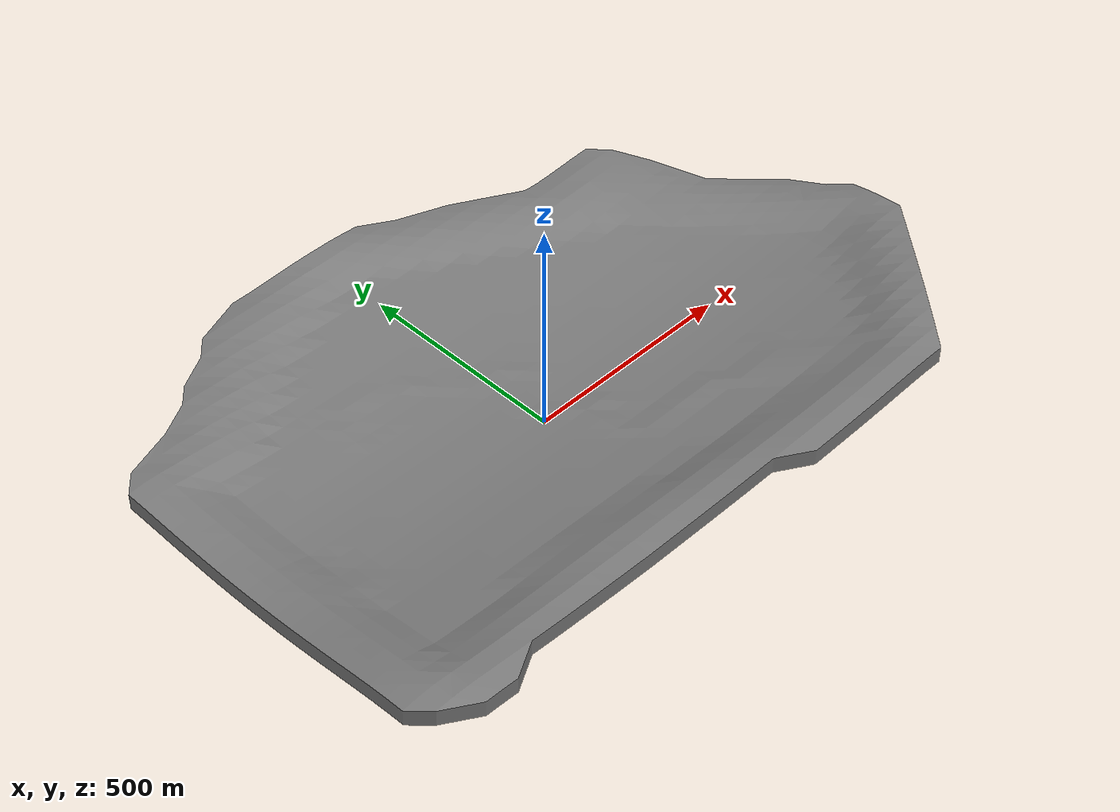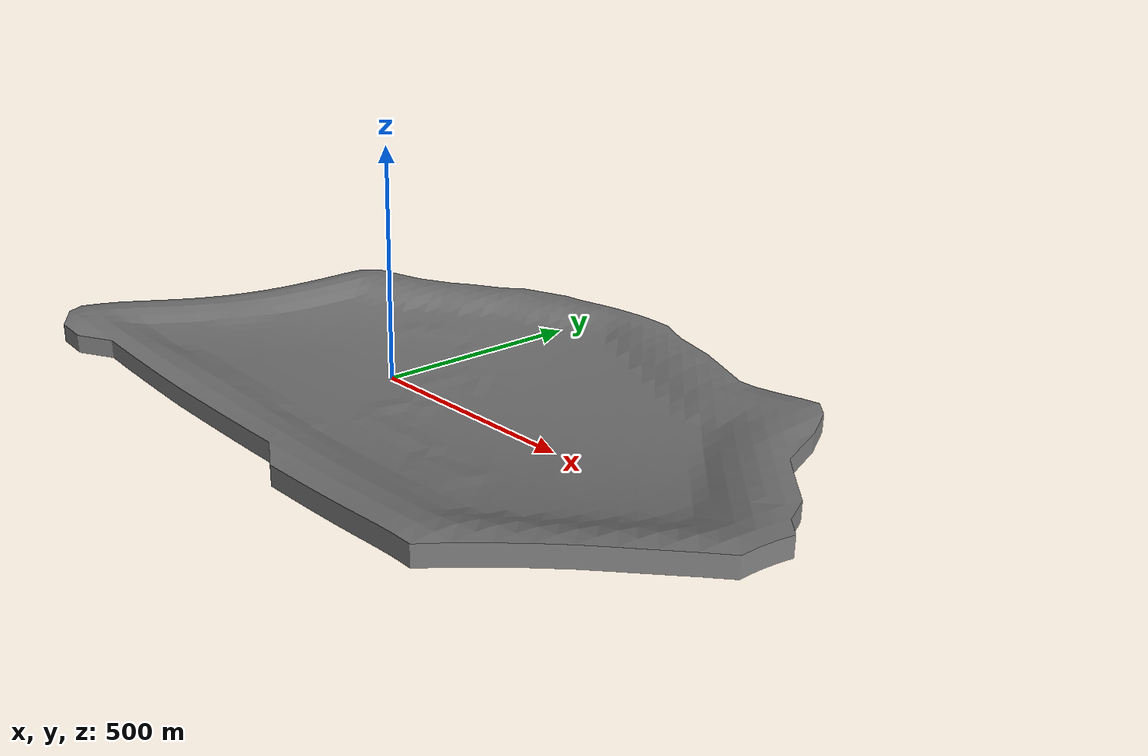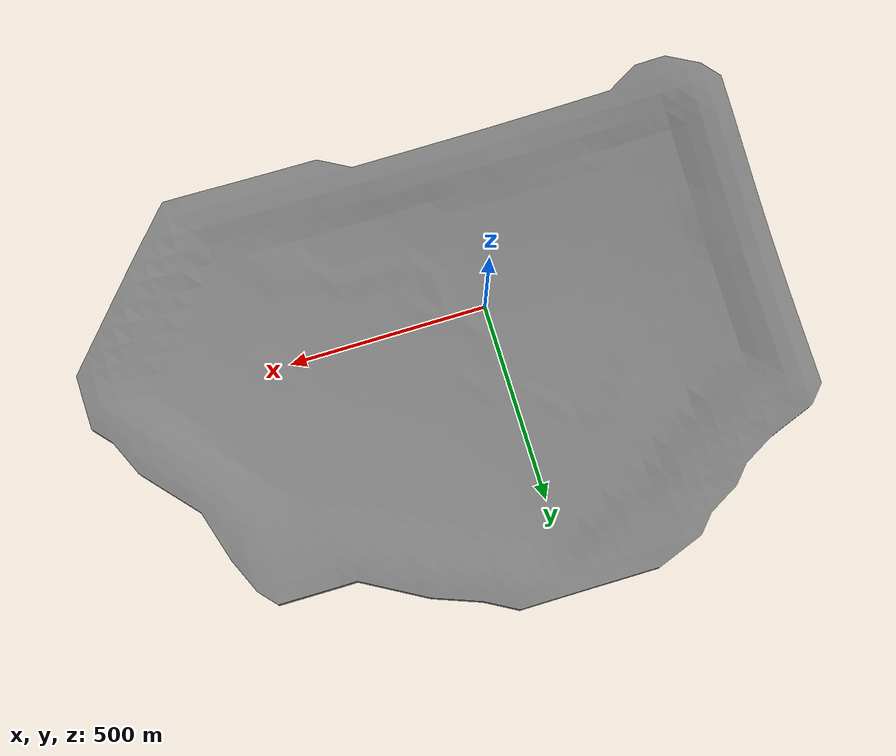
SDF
<sdf version='1.5'>
  <world name='default'>
    <light name='sundir' type='directional'>
      <cast_shadows>1</cast_shadows>
      <pose>0 0 10 0 -0 0</pose>
      <diffuse>1.0 0.95 0.8 1</diffuse>
      <specular>0.7 0.7 0.7 1</specular>
      <attenuation>
        <range>1000</range>
        <constant>0.9</constant>
        <linear>0.01</linear>
        <quadratic>0.001</quadratic>
      </attenuation>
      <direction>-0.3 0.4 -1.0</direction>
    </light>
    <model name='Vineyard'>
      <pose>0 0 -50 1.5708 -0 0</pose>
      <static>1</static>
      <link name='body'>
      <collision name='collision'>
          <geometry>
            <mesh>
              <uri>model://Vineyard_NDVI_collision.dae</uri>
            </mesh>
          </geometry>
          <max_contacts>10</max_contacts>
          <surface>
            <bounce/>
            <friction>
              <ode/>
            </friction>
            <contact>
              <ode/>
            </contact>
          </surface>
        </collision>
        <visual name='visual'>
          <geometry>
            <mesh>
              <uri>model://Vineyard_NDVI.dae</uri>
            </mesh>
          </geometry>
        </visual>
      </link>
    </model>
    <scene>
      <ambient>1.0 1.0 1.0 1</ambient>
      <background>0.0 0.7 1.0 1</background>
      <shadows>1</shadows>
    </scene>
  </world>
</sdf>
